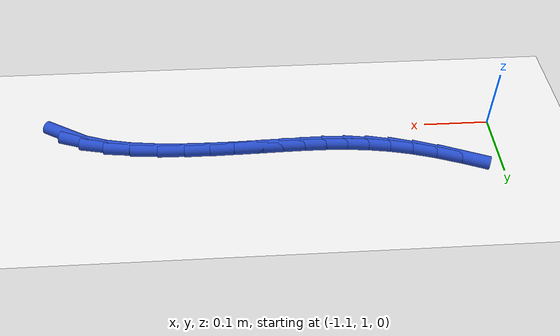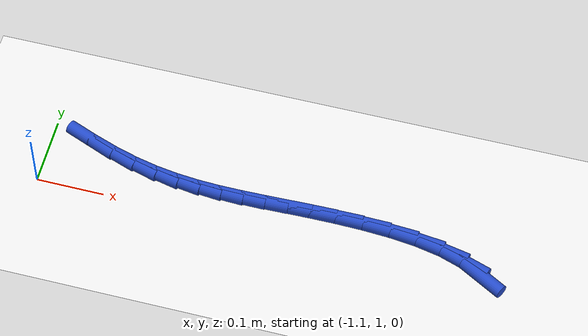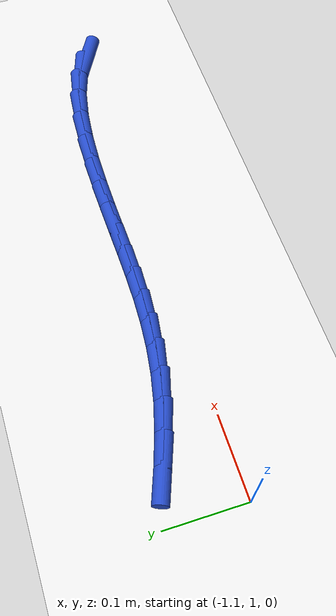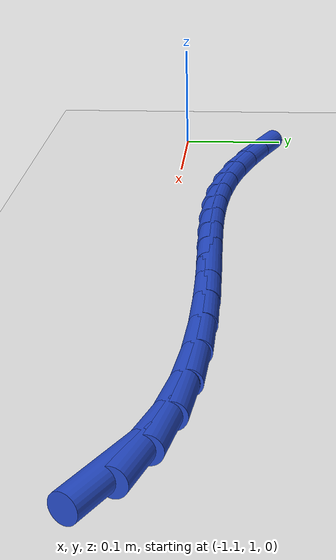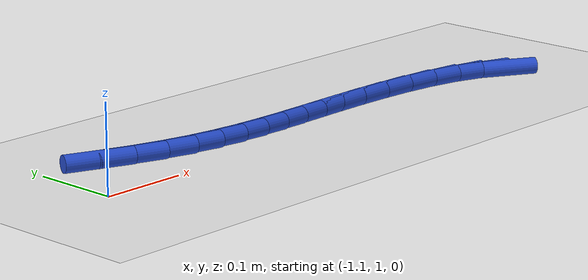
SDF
<sdf version="1.6">
 <world name="default">
  <model name="ground_plane">
   <static>1</static>
   <link name="link">
    <collision name="collision">
     <geometry><plane><normal>0 0 1</normal><size>100 100</size></plane></geometry>
     <surface><friction><ode><mu>100</mu><mu2>50</mu2></ode></friction></surface>
    </collision>
    <visual name="visual">
     <cast_shadows>0</cast_shadows>
     <geometry><plane><normal>0 0 1</normal><size>100 100</size></plane></geometry>
     <material>
      <script><uri>file://media/materials/scripts/gazebo.material</uri><name>Gazebo/WhiteGlow</name></script>
     </material>
    </visual>
   </link>
  </model>
  <model name="line">
   <link name="link_34">
    <pose>-0.44666760611306816 1.000567624529239 0.01 0 1.57 -0.5101871442627651</pose>
    <collision name="collision">
     <geometry><cylinder><radius>0.01</radius><length>0.08</length></cylinder></geometry>
    </collision>
    <visual name="visual">
     <material>
      <script><name>Gazebo/Blue</name><uri>file://media/materials/scripts/gazebo.material</uri></script>
     </material>
     <geometry><cylinder><radius>0.01</radius><length>0.08</length></cylinder></geometry>
    </visual>
   </link>
   <link name="link_35">
    <pose>-0.4738812804592791 1.015796517514928 0.01 0 1.57 -0.32175108508715977</pose>
    <collision name="collision">
     <geometry><cylinder><radius>0.01</radius><length>0.08</length></cylinder></geometry>
    </collision>
    <visual name="visual">
     <material>
      <script><name>Gazebo/Blue</name><uri>file://media/materials/scripts/gazebo.material</uri></script>
     </material>
     <geometry><cylinder><radius>0.01</radius><length>0.08</length></cylinder></geometry>
    </visual>
   </link>
   <link name="link_36">
    <pose>-0.5069618726997189 1.026823401101252 0.01 0 1.57 -0.1976176260841162</pose>
    <collision name="collision">
     <geometry><cylinder><radius>0.01</radius><length>0.08</length></cylinder></geometry>
    </collision>
    <visual name="visual">
     <material>
      <script><name>Gazebo/Blue</name><uri>file://media/materials/scripts/gazebo.material</uri></script>
     </material>
     <geometry><cylinder><radius>0.01</radius><length>0.08</length></cylinder></geometry>
    </visual>
   </link>
   <link name="link_37">
    <pose>-0.5442835655645152 1.034296359460487 0.01 0 1.57 -0.11386347345799201</pose>
    <collision name="collision">
     <geometry><cylinder><radius>0.01</radius><length>0.08</length></cylinder></geometry>
    </collision>
    <visual name="visual">
     <material>
      <script><name>Gazebo/Blue</name><uri>file://media/materials/scripts/gazebo.material</uri></script>
     </material>
     <geometry><cylinder><radius>0.01</radius><length>0.08</length></cylinder></geometry>
    </visual>
   </link>
   <link name="link_38">
    <pose>-0.5842205417837948 1.0388634767649083 0.01 0 1.57 -0.05636732511187883</pose>
    <collision name="collision">
     <geometry><cylinder><radius>0.01</radius><length>0.08</length></cylinder></geometry>
    </collision>
    <visual name="visual">
     <material>
      <script><name>Gazebo/Blue</name><uri>file://media/materials/scripts/gazebo.material</uri></script>
     </material>
     <geometry><cylinder><radius>0.01</radius><length>0.08</length></cylinder></geometry>
    </visual>
   </link>
   <link name="link_39">
    <pose>-0.6251469840876843 1.0411728371867917 0.01 0 1.57 -0.017364502440103024</pose>
    <collision name="collision">
     <geometry><cylinder><radius>0.01</radius><length>0.08</length></cylinder></geometry>
    </collision>
    <visual name="visual">
     <material>
      <script><name>Gazebo/Blue</name><uri>file://media/materials/scripts/gazebo.material</uri></script>
     </material>
     <geometry><cylinder><radius>0.01</radius><length>0.08</length></cylinder></geometry>
    </visual>
   </link>
   <link name="link_40">
    <pose>-0.6654370752063115 1.0418725248984129 0.01 0 1.57 0.007525057697815429</pose>
    <collision name="collision">
     <geometry><cylinder><radius>0.01</radius><length>0.08</length></cylinder></geometry>
    </collision>
    <visual name="visual">
     <material>
      <script><name>Gazebo/Blue</name><uri>file://media/materials/scripts/gazebo.material</uri></script>
     </material>
     <geometry><cylinder><radius>0.01</radius><length>0.08</length></cylinder></geometry>
    </visual>
   </link>
   <link name="link_41">
    <pose>-0.7036985361444995 1.0415845997624995 0.01 0 1.57 0.022180041345182352</pose>
    <collision name="collision">
     <geometry><cylinder><radius>0.01</radius><length>0.08</length></cylinder></geometry>
    </collision>
    <visual name="visual">
     <material>
      <script><name>Gazebo/Blue</name><uri>file://media/materials/scripts/gazebo.material</uri></script>
     </material>
     <geometry><cylinder><radius>0.01</radius><length>0.08</length></cylinder></geometry>
    </visual>
   </link>
   <link name="link_42">
    <pose>-0.7398770363474706 1.0407820275182698 0.01 0 1.57 0.025988859347803008</pose>
    <collision name="collision">
     <geometry><cylinder><radius>0.01</radius><length>0.08</length></cylinder></geometry>
    </collision>
    <visual name="visual">
     <material>
      <script><name>Gazebo/Blue</name><uri>file://media/materials/scripts/gazebo.material</uri></script>
     </material>
     <geometry><cylinder><radius>0.01</radius><length>0.08</length></cylinder></geometry>
    </visual>
   </link>
   <link name="link_43">
    <pose>-0.7743938741353531 1.0398847722584814 0.01 0 1.57 0.0171884725797061</pose>
    <collision name="collision">
     <geometry><cylinder><radius>0.01</radius><length>0.08</length></cylinder></geometry>
    </collision>
    <visual name="visual">
     <material>
      <script><name>Gazebo/Blue</name><uri>file://media/materials/scripts/gazebo.material</uri></script>
     </material>
     <geometry><cylinder><radius>0.01</radius><length>0.08</length></cylinder></geometry>
    </visual>
   </link>
   <link name="link_44">
    <pose>-0.8076709198301236 1.0393127343349344 0.01 0 1.57 -0.005332187170313639</pose>
    <collision name="collision">
     <geometry><cylinder><radius>0.01</radius><length>0.08</length></cylinder></geometry>
    </collision>
    <visual name="visual">
     <material>
      <script><name>Gazebo/Blue</name><uri>file://media/materials/scripts/gazebo.material</uri></script>
     </material>
     <geometry><cylinder><radius>0.01</radius><length>0.08</length></cylinder></geometry>
    </visual>
   </link>
   <link name="link_45">
    <pose>-0.8401300437537591 1.03948581409943 0.01 0 1.57 -0.04170909619967235</pose>
    <collision name="collision">
     <geometry><cylinder><radius>0.01</radius><length>0.08</length></cylinder></geometry>
    </collision>
    <visual name="visual">
     <material>
      <script><name>Gazebo/Blue</name><uri>file://media/materials/scripts/gazebo.material</uri></script>
     </material>
     <geometry><cylinder><radius>0.01</radius><length>0.08</length></cylinder></geometry>
    </visual>
   </link>
   <link name="link_46">
    <pose>-0.8721931162282368 1.0408239119037688 0.01 0 1.57 -0.09084051844408403</pose>
    <collision name="collision">
     <geometry><cylinder><radius>0.01</radius><length>0.08</length></cylinder></geometry>
    </collision>
    <visual name="visual">
     <material>
      <script><name>Gazebo/Blue</name><uri>file://media/materials/scripts/gazebo.material</uri></script>
     </material>
     <geometry><cylinder><radius>0.01</radius><length>0.08</length></cylinder></geometry>
    </visual>
   </link>
   <link name="link_47">
    <pose>-0.904282007575533 1.0437469280997507 0.01 0 1.57 -0.15031284019430727</pose>
    <collision name="collision">
     <geometry><cylinder><radius>0.01</radius><length>0.08</length></cylinder></geometry>
    </collision>
    <visual name="visual">
     <material>
      <script><name>Gazebo/Blue</name><uri>file://media/materials/scripts/gazebo.material</uri></script>
     </material>
     <geometry><cylinder><radius>0.01</radius><length>0.08</length></cylinder></geometry>
    </visual>
   </link>
   <link name="link_48">
    <pose>-0.9368185881176252 1.048674763039176 0.01 0 1.57 -0.21664176366071328</pose>
    <collision name="collision">
     <geometry><cylinder><radius>0.01</radius><length>0.08</length></cylinder></geometry>
    </collision>
    <visual name="visual">
     <material>
      <script><name>Gazebo/Blue</name><uri>file://media/materials/scripts/gazebo.material</uri></script>
     </material>
     <geometry><cylinder><radius>0.01</radius><length>0.08</length></cylinder></geometry>
    </visual>
   </link>
   <link name="link_49">
    <pose>-0.9702247281764903 1.056027317073846 0.01 0 1.57 -0.28445234879375075</pose>
    <collision name="collision">
     <geometry><cylinder><radius>0.01</radius><length>0.08</length></cylinder></geometry>
    </collision>
    <visual name="visual">
     <material>
      <script><name>Gazebo/Blue</name><uri>file://media/materials/scripts/gazebo.material</uri></script>
     </material>
     <geometry><cylinder><radius>0.01</radius><length>0.08</length></cylinder></geometry>
    </visual>
   </link>
   <link name="link_50">
    <pose>-1.0048782815031003 1.066159359020659 0.01 0 1.57 -0.3384817668990038</pose>
    <collision name="collision">
     <geometry><cylinder><radius>0.01</radius><length>0.08</length></cylinder></geometry>
    </collision>
    <visual name="visual">
     <material>
      <script><name>Gazebo/Blue</name><uri>file://media/materials/scripts/gazebo.material</uri></script>
     </material>
     <geometry><cylinder><radius>0.01</radius><length>0.08</length></cylinder></geometry>
    </visual>
   </link>
   <link name="link_51">
    <pose>-1.0407180742041144 1.078776026348917 0.01 0 1.57 -0.37458024553834374</pose>
    <collision name="collision">
     <geometry><cylinder><radius>0.01</radius><length>0.08</length></cylinder></geometry>
    </collision>
    <visual name="visual">
     <material>
      <script><name>Gazebo/Blue</name><uri>file://media/materials/scripts/gazebo.material</uri></script>
     </material>
     <geometry><cylinder><radius>0.01</radius><length>0.08</length></cylinder></geometry>
    </visual>
   </link>
  </model>
 </world>
</sdf>
